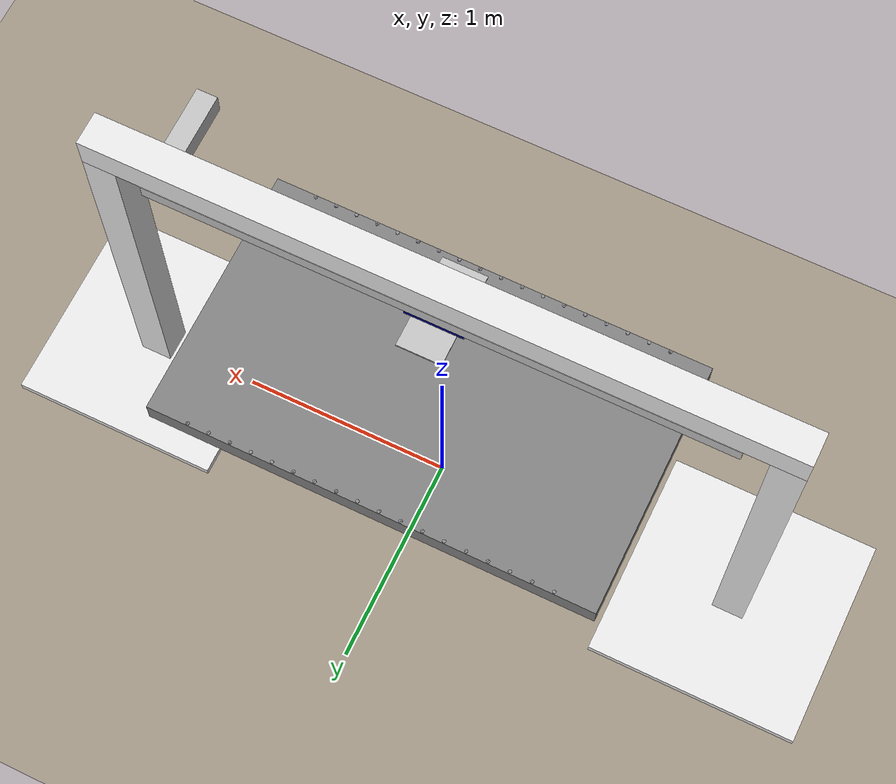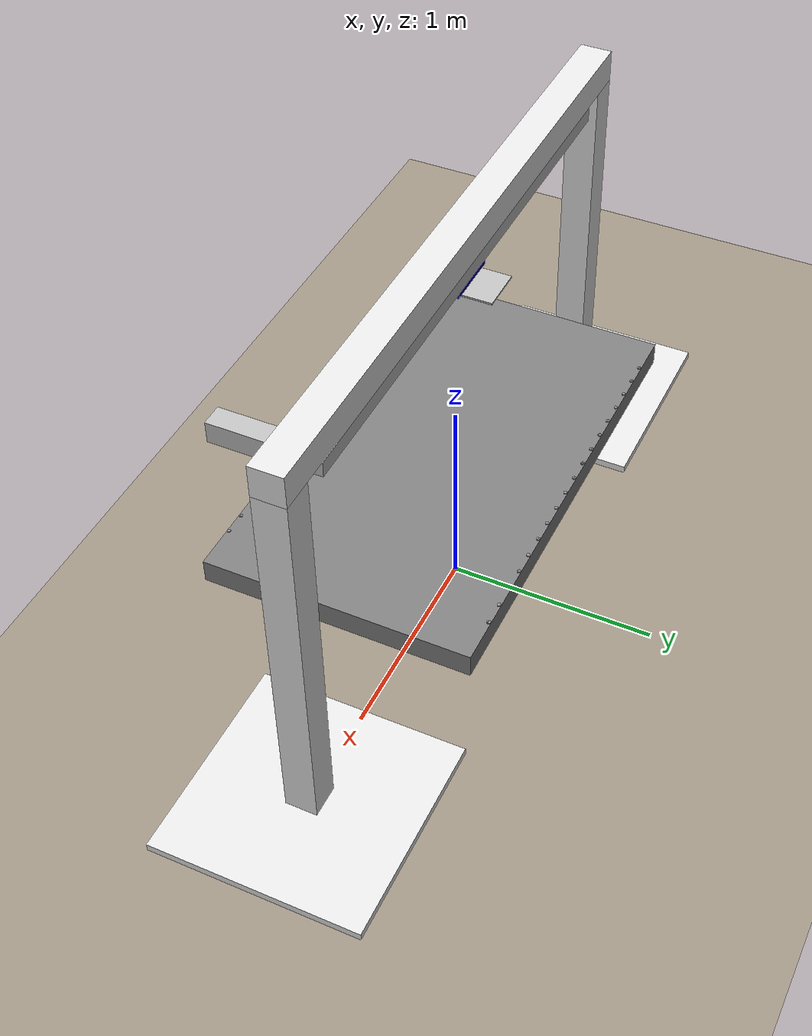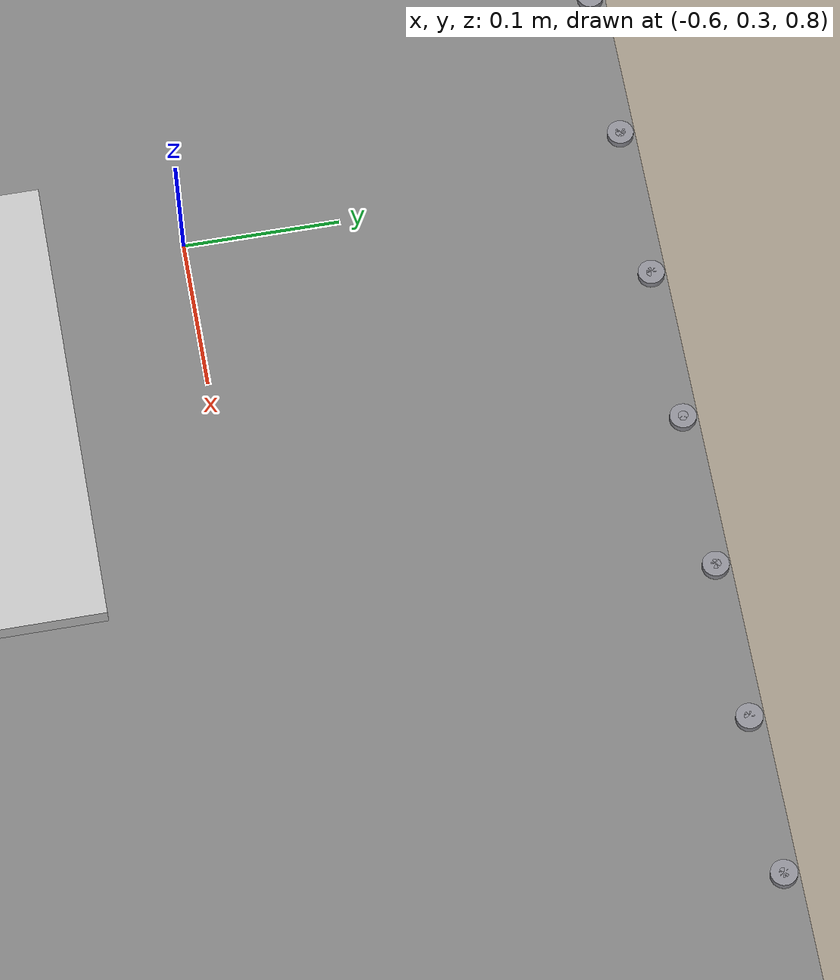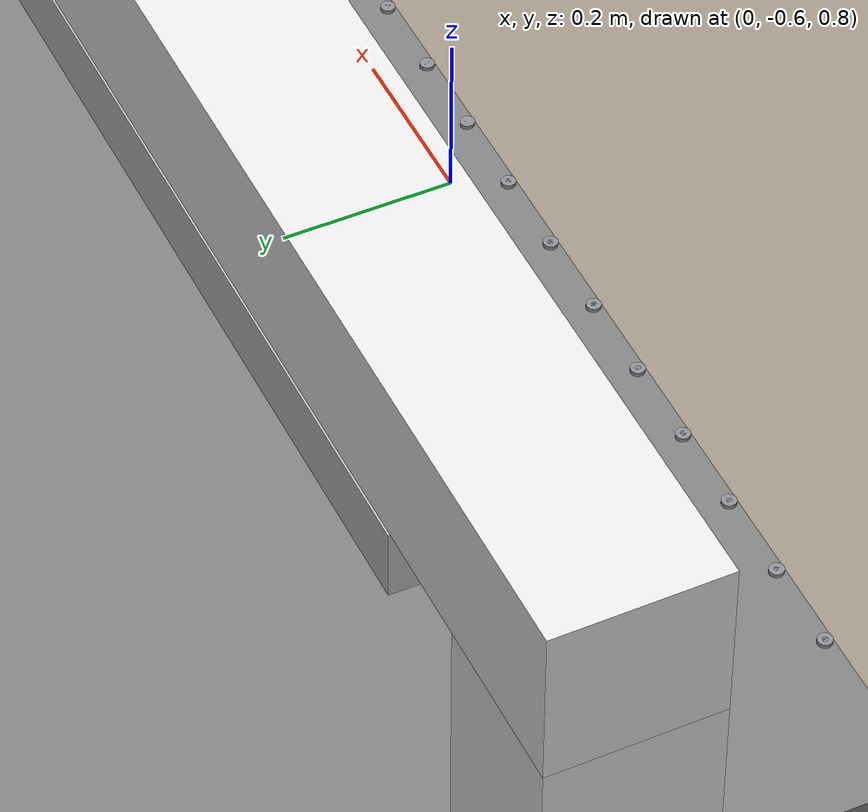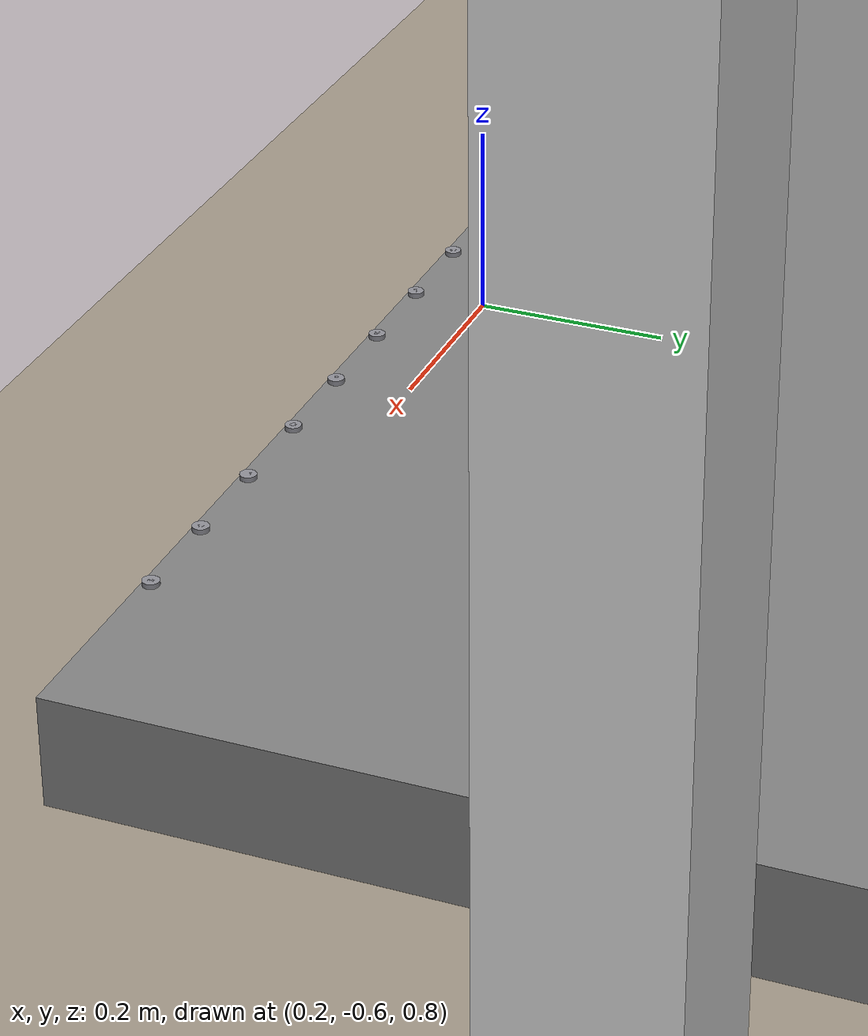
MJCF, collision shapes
<mujoco model="arpa_system">
  <!-- ARPA disassembly workcell, ported from arpa_description            -->
  <!--   (urdf/arpa_system_macro.urdf.xacro + gantry/linear_actuator      -->
  <!--    xacros). Hand-composed from the URDF's fixed-joint chain so it   -->
  <!--    needs no external ROS packages.                                  -->
  <!-- Included: gantry frame (crossbeam, 2 pillars, 2 feet), the battery  -->
  <!--   pack/table (mesh), and the linear actuator (rail + motor + a      -->
  <!--   prismatic carriage plate + arm-mount plate).                      -->
  <!-- NOT included: the UR16e arm, tool holder, runner, camera — those    -->
  <!--   come from external ur_description / parker packages and hang off   -->
  <!--   the arm's tool0, so they are not part of the standalone cell.      -->
  <!-- View: python CL_Assets/view_mjcf.py CL_Assets/battery/arpa_system.xml
       floor_link (cell origin) sits at world z=0; battery surface ~0.73 m. -->

  <compiler angle="radian" autolimits="true"/>
  <option integrator="implicitfast" timestep="0.002">
    <flag multiccd="enable"/>
  </option>

  <statistic center="0 0 1.0" extent="2.5"/>

  <visual>
    <headlight diffuse="0.6 0.6 0.6" ambient="0.2 0.2 0.2" specular="0.3 0.3 0.3"/>
    <global azimuth="130" elevation="-20"/>
  </visual>

  <asset>
    <!--  scene dressing (drop these three + the floor/light below when
              embedding the cell into another scene, e.g. RoboCasa)  -->
    <texture type="skybox" builtin="gradient" rgb1="0.78 0.90 0.78" rgb2="0.55 0.75 0.58" width="512" height="3072"/>
    <texture type="2d" name="groundplane" builtin="flat" mark="edge"
             rgb1="0.62 0.58 0.52" rgb2="0.1 0.2 0.3" markrgb="0.8 0.8 0.8" width="300" height="300"/>
    <material name="groundplane" texture="groundplane" texuniform="true" texrepeat="5 5" reflectance="0.1"/>

    <!--  cell materials (from materials.xacro + inline URDF colors)  -->
    <material name="gantry_gray"   rgba="0.9 0.9 0.9 1"  specular="0.3" shininess="0.3"/>
    <material name="pillar_gray"   rgba="0.9 0.9 0.9 1"  specular="0.3" shininess="0.3"/>
    <material name="actuator_gray" rgba="0.75 0.75 0.75 1" specular="0.3" shininess="0.3"/>
    <material name="actuator_plate" rgba="0.0 0.0 0.5 1" specular="0.3" shininess="0.3"/>
    <material name="arm_mount_gray" rgba="0.75 0.75 0.75 1" specular="0.3" shininess="0.3"/>
    <material name="screw_steel"   rgba="0.55 0.55 0.58 1" specular="0.6" shininess="0.5"/>
    <material name="battery_black" rgba="0.1 0.1 0.1 1" specular="0.3" shininess="0.7"/>

    <mesh name="battery" file="meshes/battery.stl"/>
    <mesh name="screw_head" file="meshes/screw_head.stl" scale="0.001 0.001 0.001"/>
  </asset>

  <worldbody>
    <light pos="0 0 4.0" dir="0 0 -1" directional="true"/>
    <geom name="floor" size="0 0 0.05" type="plane" material="groundplane"/>

    <!-- floor_link (cell root). Move this body's pos to relocate the whole cell. -->
    <body name="arpa_cell" pos="0 0 0">

      <!-- gantry crossbeam @ z=1.9419 (static / world-welded) -->
      <body name="gantry_link" pos="0 0 1.9419">
        <geom name="gantry_beam" type="box" size="1.5494 0.075 0.075" material="gantry_gray"/>

        <!-- left pillar + foot -->
        <body name="pillar_left_link" pos="1.4744 0 -1.00845">
          <geom name="pillar_left" type="box" size="0.075 0.075 0.9335" material="pillar_gray"/>
          <body name="left_leg_link" pos="0 0 -0.925">
            <geom name="left_leg" type="box" size="0.5 0.5 0.025" material="pillar_gray"/>
          </body>
        </body>

        <!-- right pillar + foot -->
        <body name="pillar_right_link" pos="-1.4744 0 -1.00845">
          <geom name="pillar_right" type="box" size="0.075 0.075 0.9335" material="pillar_gray"/>
          <body name="right_leg_link" pos="0 0 -0.925">
            <geom name="right_leg" type="box" size="0.5 0.5 0.025" material="pillar_gray"/>
          </body>
        </body>

        <!-- battery pack / table (mesh), 90deg about Z, surface ~0.73 m -->
        <body name="battery_link" pos="0.067 -0.0235 -1.1869" euler="0 0 1.57">
          <geom name="battery" type="mesh" mesh="battery" material="battery_black"
                mass="400" contype="0" conaffinity="0"/>
          <geom name="battery_collision" type="box" size="0.6125 1.06 0.055" pos="0 0 0.055" group="3"
                friction="1 0.005 0.001" condim="4" priority="1"
                solref="0.004 1" solimp="0.95 0.99 0.001"/>
        </body>

        <!-- linear actuator rail -->
        <body name="linear_actuator_link" pos="0 0 -0.11375">
          <geom name="actuator_rail" type="box" size="1.29 0.075 0.03375" material="actuator_gray"/>

          <!-- actuator motor (fixed to rail) -->
          <body name="actuator_motor_link" pos="1.245 -0.2425 0">
            <geom name="actuator_motor" type="box" size="0.0475 0.1675 0.0475" material="actuator_gray"/>
          </body>

          <body name="linear_actuator_plate_link" pos="0 0 -0.04375">
            <joint name="carriage_slide" type="slide" axis="1 0 0"
                   range="-0.9756 0.9244" damping="50"/>
            <geom name="carriage_plate" type="box" size="0.13 0.075 0.01" mass="5" material="actuator_plate"/>

            <!-- arm mount plate (where the UR16e would bolt on) -->
            <body name="arm_mount_plate" pos="0 0 -0.014" euler="0 0 3.14159">
              <geom name="arm_mount" type="box" size="0.1 0.21 0.004" mass="0.5" material="arm_mount_gray"/>
              <site name="arm_mount_site" pos="0 0 -0.004" size="0.01" rgba="0 1 0 0.3"/>
            </body>
          </body>
        </body>
      </body>
    </body>

    <!-- SCREW_ROW_START -->
    <body name="screw_01" pos="0.929980 0.578813 0.865000" euler="0 0 3.140796">
      <joint name="screw_01_free" type="free"/>
      <geom name="screw_01_head_visual" type="mesh" mesh="screw_head" euler="1.5707963 0 0" pos="0 0 0.011262"
            material="screw_steel" contype="0" conaffinity="0" density="0"/>
      <geom name="screw_01_head_collision" type="cylinder" size="0.008255 0.002500" pos="0 0 0.002500" group="3"
            mass="0.00418" material="screw_steel" friction="1 0.005 0.001" solref="0.004 1" solimp="0.95 0.99 0.001" priority="1"/>
      <geom name="screw_01_shaft" type="cylinder" size="0.003175 0.009525" pos="0 0 -0.004525"
            mass="0.00382" material="screw_steel" contype="0" conaffinity="0"/>
    </body>
    <body name="screw_02" pos="0.828380 0.578894 0.865000" euler="0 0 3.140796">
      <joint name="screw_02_free" type="free"/>
      <geom name="screw_02_head_visual" type="mesh" mesh="screw_head" euler="1.5707963 0 0" pos="0 0 0.011262"
            material="screw_steel" contype="0" conaffinity="0" density="0"/>
      <geom name="screw_02_head_collision" type="cylinder" size="0.008255 0.002500" pos="0 0 0.002500" group="3"
            mass="0.00418" material="screw_steel" friction="1 0.005 0.001" solref="0.004 1" solimp="0.95 0.99 0.001" priority="1"/>
      <geom name="screw_02_shaft" type="cylinder" size="0.003175 0.009525" pos="0 0 -0.004525"
            mass="0.00382" material="screw_steel" contype="0" conaffinity="0"/>
    </body>
    <body name="screw_03" pos="0.726780 0.578975 0.865000" euler="0 0 3.140796">
      <joint name="screw_03_free" type="free"/>
      <geom name="screw_03_head_visual" type="mesh" mesh="screw_head" euler="1.5707963 0 0" pos="0 0 0.011262"
            material="screw_steel" contype="0" conaffinity="0" density="0"/>
      <geom name="screw_03_head_collision" type="cylinder" size="0.008255 0.002500" pos="0 0 0.002500" group="3"
            mass="0.00418" material="screw_steel" friction="1 0.005 0.001" solref="0.004 1" solimp="0.95 0.99 0.001" priority="1"/>
      <geom name="screw_03_shaft" type="cylinder" size="0.003175 0.009525" pos="0 0 -0.004525"
            mass="0.00382" material="screw_steel" contype="0" conaffinity="0"/>
    </body>
    <body name="screw_04" pos="0.625180 0.579056 0.865000" euler="0 0 3.140796">
      <joint name="screw_04_free" type="free"/>
      <geom name="screw_04_head_visual" type="mesh" mesh="screw_head" euler="1.5707963 0 0" pos="0 0 0.011262"
            material="screw_steel" contype="0" conaffinity="0" density="0"/>
      <geom name="screw_04_head_collision" type="cylinder" size="0.008255 0.002500" pos="0 0 0.002500" group="3"
            mass="0.00418" material="screw_steel" friction="1 0.005 0.001" solref="0.004 1" solimp="0.95 0.99 0.001" priority="1"/>
      <geom name="screw_04_shaft" type="cylinder" size="0.003175 0.009525" pos="0 0 -0.004525"
            mass="0.00382" material="screw_steel" contype="0" conaffinity="0"/>
    </body>
    <body name="screw_05" pos="0.523580 0.579137 0.865000" euler="0 0 3.140796">
      <joint name="screw_05_free" type="free"/>
      <geom name="screw_05_head_visual" type="mesh" mesh="screw_head" euler="1.5707963 0 0" pos="0 0 0.011262"
            material="screw_steel" contype="0" conaffinity="0" density="0"/>
      <geom name="screw_05_head_collision" type="cylinder" size="0.008255 0.002500" pos="0 0 0.002500" group="3"
            mass="0.00418" material="screw_steel" friction="1 0.005 0.001" solref="0.004 1" solimp="0.95 0.99 0.001" priority="1"/>
      <geom name="screw_05_shaft" type="cylinder" size="0.003175 0.009525" pos="0 0 -0.004525"
            mass="0.00382" material="screw_steel" contype="0" conaffinity="0"/>
    </body>
    <body name="screw_06" pos="0.421980 0.579218 0.865000" euler="0 0 3.140796">
      <joint name="screw_06_free" type="free"/>
      <geom name="screw_06_head_visual" type="mesh" mesh="screw_head" euler="1.5707963 0 0" pos="0 0 0.011262"
            material="screw_steel" contype="0" conaffinity="0" density="0"/>
      <geom name="screw_06_head_collision" type="cylinder" size="0.008255 0.002500" pos="0 0 0.002500" group="3"
            mass="0.00418" material="screw_steel" friction="1 0.005 0.001" solref="0.004 1" solimp="0.95 0.99 0.001" priority="1"/>
      <geom name="screw_06_shaft" type="cylinder" size="0.003175 0.009525" pos="0 0 -0.004525"
            mass="0.00382" material="screw_steel" contype="0" conaffinity="0"/>
    </body>
    <body name="screw_07" pos="0.320380 0.579298 0.865000" euler="0 0 3.140796">
      <joint name="screw_07_free" type="free"/>
      <geom name="screw_07_head_visual" type="mesh" mesh="screw_head" euler="1.5707963 0 0" pos="0 0 0.011262"
            material="screw_steel" contype="0" conaffinity="0" density="0"/>
      <geom name="screw_07_head_collision" type="cylinder" size="0.008255 0.002500" pos="0 0 0.002500" group="3"
            mass="0.00418" material="screw_steel" friction="1 0.005 0.001" solref="0.004 1" solimp="0.95 0.99 0.001" priority="1"/>
      <geom name="screw_07_shaft" type="cylinder" size="0.003175 0.009525" pos="0 0 -0.004525"
            mass="0.00382" material="screw_steel" contype="0" conaffinity="0"/>
    </body>
    <body name="screw_08" pos="0.218780 0.579379 0.865000" euler="0 0 3.140796">
      <joint name="screw_08_free" type="free"/>
      <geom name="screw_08_head_visual" type="mesh" mesh="screw_head" euler="1.5707963 0 0" pos="0 0 0.011262"
            material="screw_steel" contype="0" conaffinity="0" density="0"/>
      <geom name="screw_08_head_collision" type="cylinder" size="0.008255 0.002500" pos="0 0 0.002500" group="3"
            mass="0.00418" material="screw_steel" friction="1 0.005 0.001" solref="0.004 1" solimp="0.95 0.99 0.001" priority="1"/>
      <geom name="screw_08_shaft" type="cylinder" size="0.003175 0.009525" pos="0 0 -0.004525"
            mass="0.00382" material="screw_steel" contype="0" conaffinity="0"/>
    </body>
    <body name="screw_09" pos="0.117180 0.579460 0.865000" euler="0 0 3.140796">
      <joint name="screw_09_free" type="free"/>
      <geom name="screw_09_head_visual" type="mesh" mesh="screw_head" euler="1.5707963 0 0" pos="0 0 0.011262"
            material="screw_steel" contype="0" conaffinity="0" density="0"/>
      <geom name="screw_09_head_collision" type="cylinder" size="0.008255 0.002500" pos="0 0 0.002500" group="3"
            mass="0.00418" material="screw_steel" friction="1 0.005 0.001" solref="0.004 1" solimp="0.95 0.99 0.001" priority="1"/>
      <geom name="screw_09_shaft" type="cylinder" size="0.003175 0.009525" pos="0 0 -0.004525"
            mass="0.00382" material="screw_steel" contype="0" conaffinity="0"/>
    </body>
    <body name="screw_10" pos="0.015580 0.579541 0.865000" euler="0 0 3.140796">
      <joint name="screw_10_free" type="free"/>
      <geom name="screw_10_head_visual" type="mesh" mesh="screw_head" euler="1.5707963 0 0" pos="0 0 0.011262"
            material="screw_steel" contype="0" conaffinity="0" density="0"/>
      <geom name="screw_10_head_collision" type="cylinder" size="0.008255 0.002500" pos="0 0 0.002500" group="3"
            mass="0.00418" material="screw_steel" friction="1 0.005 0.001" solref="0.004 1" solimp="0.95 0.99 0.001" priority="1"/>
      <geom name="screw_10_shaft" type="cylinder" size="0.003175 0.009525" pos="0 0 -0.004525"
            mass="0.00382" material="screw_steel" contype="0" conaffinity="0"/>
    </body>
    <body name="screw_11" pos="-0.086020 0.579622 0.865000" euler="0 0 3.140796">
      <joint name="screw_11_free" type="free"/>
      <geom name="screw_11_head_visual" type="mesh" mesh="screw_head" euler="1.5707963 0 0" pos="0 0 0.011262"
            material="screw_steel" contype="0" conaffinity="0" density="0"/>
      <geom name="screw_11_head_collision" type="cylinder" size="0.008255 0.002500" pos="0 0 0.002500" group="3"
            mass="0.00418" material="screw_steel" friction="1 0.005 0.001" solref="0.004 1" solimp="0.95 0.99 0.001" priority="1"/>
      <geom name="screw_11_shaft" type="cylinder" size="0.003175 0.009525" pos="0 0 -0.004525"
            mass="0.00382" material="screw_steel" contype="0" conaffinity="0"/>
    </body>
    <body name="screw_12" pos="-0.187620 0.579703 0.865000" euler="0 0 3.140796">
      <joint name="screw_12_free" type="free"/>
      <geom name="screw_12_head_visual" type="mesh" mesh="screw_head" euler="1.5707963 0 0" pos="0 0 0.011262"
            material="screw_steel" contype="0" conaffinity="0" density="0"/>
      <geom name="screw_12_head_collision" type="cylinder" size="0.008255 0.002500" pos="0 0 0.002500" group="3"
            mass="0.00418" material="screw_steel" friction="1 0.005 0.001" solref="0.004 1" solimp="0.95 0.99 0.001" priority="1"/>
      <geom name="screw_12_shaft" type="cylinder" size="0.003175 0.009525" pos="0 0 -0.004525"
            mass="0.00382" material="screw_steel" contype="0" conaffinity="0"/>
    </body>
    <body name="screw_13" pos="-0.289220 0.579784 0.865000" euler="0 0 3.140796">
      <joint name="screw_13_free" type="free"/>
      <geom name="screw_13_head_visual" type="mesh" mesh="screw_head" euler="1.5707963 0 0" pos="0 0 0.011262"
            material="screw_steel" contype="0" conaffinity="0" density="0"/>
      <geom name="screw_13_head_collision" type="cylinder" size="0.008255 0.002500" pos="0 0 0.002500" group="3"
            mass="0.00418" material="screw_steel" friction="1 0.005 0.001" solref="0.004 1" solimp="0.95 0.99 0.001" priority="1"/>
      <geom name="screw_13_shaft" type="cylinder" size="0.003175 0.009525" pos="0 0 -0.004525"
            mass="0.00382" material="screw_steel" contype="0" conaffinity="0"/>
    </body>
    <body name="screw_14" pos="-0.390820 0.579865 0.865000" euler="0 0 3.140796">
      <joint name="screw_14_free" type="free"/>
      <geom name="screw_14_head_visual" type="mesh" mesh="screw_head" euler="1.5707963 0 0" pos="0 0 0.011262"
            material="screw_steel" contype="0" conaffinity="0" density="0"/>
      <geom name="screw_14_head_collision" type="cylinder" size="0.008255 0.002500" pos="0 0 0.002500" group="3"
            mass="0.00418" material="screw_steel" friction="1 0.005 0.001" solref="0.004 1" solimp="0.95 0.99 0.001" priority="1"/>
      <geom name="screw_14_shaft" type="cylinder" size="0.003175 0.009525" pos="0 0 -0.004525"
            mass="0.00382" material="screw_steel" contype="0" conaffinity="0"/>
    </body>
    <body name="screw_15" pos="-0.492420 0.579946 0.865000" euler="0 0 3.140796">
      <joint name="screw_15_free" type="free"/>
      <geom name="screw_15_head_visual" type="mesh" mesh="screw_head" euler="1.5707963 0 0" pos="0 0 0.011262"
            material="screw_steel" contype="0" conaffinity="0" density="0"/>
      <geom name="screw_15_head_collision" type="cylinder" size="0.008255 0.002500" pos="0 0 0.002500" group="3"
            mass="0.00418" material="screw_steel" friction="1 0.005 0.001" solref="0.004 1" solimp="0.95 0.99 0.001" priority="1"/>
      <geom name="screw_15_shaft" type="cylinder" size="0.003175 0.009525" pos="0 0 -0.004525"
            mass="0.00382" material="screw_steel" contype="0" conaffinity="0"/>
    </body>
    <body name="screw_16" pos="-0.594020 0.580027 0.865000" euler="0 0 3.140796">
      <joint name="screw_16_free" type="free"/>
      <geom name="screw_16_head_visual" type="mesh" mesh="screw_head" euler="1.5707963 0 0" pos="0 0 0.011262"
            material="screw_steel" contype="0" conaffinity="0" density="0"/>
      <geom name="screw_16_head_collision" type="cylinder" size="0.008255 0.002500" pos="0 0 0.002500" group="3"
            mass="0.00418" material="screw_steel" friction="1 0.005 0.001" solref="0.004 1" solimp="0.95 0.99 0.001" priority="1"/>
      <geom name="screw_16_shaft" type="cylinder" size="0.003175 0.009525" pos="0 0 -0.004525"
            mass="0.00382" material="screw_steel" contype="0" conaffinity="0"/>
    </body>
    <body name="screw_17" pos="-0.695620 0.580107 0.865000" euler="0 0 3.140796">
      <joint name="screw_17_free" type="free"/>
      <geom name="screw_17_head_visual" type="mesh" mesh="screw_head" euler="1.5707963 0 0" pos="0 0 0.011262"
            material="screw_steel" contype="0" conaffinity="0" density="0"/>
      <geom name="screw_17_head_collision" type="cylinder" size="0.008255 0.002500" pos="0 0 0.002500" group="3"
            mass="0.00418" material="screw_steel" friction="1 0.005 0.001" solref="0.004 1" solimp="0.95 0.99 0.001" priority="1"/>
      <geom name="screw_17_shaft" type="cylinder" size="0.003175 0.009525" pos="0 0 -0.004525"
            mass="0.00382" material="screw_steel" contype="0" conaffinity="0"/>
    </body>
    <body name="screw_18" pos="-0.797220 0.580188 0.865000" euler="0 0 3.140796">
      <joint name="screw_18_free" type="free"/>
      <geom name="screw_18_head_visual" type="mesh" mesh="screw_head" euler="1.5707963 0 0" pos="0 0 0.011262"
            material="screw_steel" contype="0" conaffinity="0" density="0"/>
      <geom name="screw_18_head_collision" type="cylinder" size="0.008255 0.002500" pos="0 0 0.002500" group="3"
            mass="0.00418" material="screw_steel" friction="1 0.005 0.001" solref="0.004 1" solimp="0.95 0.99 0.001" priority="1"/>
      <geom name="screw_18_shaft" type="cylinder" size="0.003175 0.009525" pos="0 0 -0.004525"
            mass="0.00382" material="screw_steel" contype="0" conaffinity="0"/>
    </body>
    <body name="screw_19" pos="0.929020 -0.627187 0.865000" euler="0 0 3.140796">
      <joint name="screw_19_free" type="free"/>
      <geom name="screw_19_head_visual" type="mesh" mesh="screw_head" euler="1.5707963 0 0" pos="0 0 0.011262"
            material="screw_steel" contype="0" conaffinity="0" density="0"/>
      <geom name="screw_19_head_collision" type="cylinder" size="0.008255 0.002500" pos="0 0 0.002500" group="3"
            mass="0.00418" material="screw_steel" friction="1 0.005 0.001" solref="0.004 1" solimp="0.95 0.99 0.001" priority="1"/>
      <geom name="screw_19_shaft" type="cylinder" size="0.003175 0.009525" pos="0 0 -0.004525"
            mass="0.00382" material="screw_steel" contype="0" conaffinity="0"/>
    </body>
    <body name="screw_20" pos="0.827420 -0.627106 0.865000" euler="0 0 3.140796">
      <joint name="screw_20_free" type="free"/>
      <geom name="screw_20_head_visual" type="mesh" mesh="screw_head" euler="1.5707963 0 0" pos="0 0 0.011262"
            material="screw_steel" contype="0" conaffinity="0" density="0"/>
      <geom name="screw_20_head_collision" type="cylinder" size="0.008255 0.002500" pos="0 0 0.002500" group="3"
            mass="0.00418" material="screw_steel" friction="1 0.005 0.001" solref="0.004 1" solimp="0.95 0.99 0.001" priority="1"/>
      <geom name="screw_20_shaft" type="cylinder" size="0.003175 0.009525" pos="0 0 -0.004525"
            mass="0.00382" material="screw_steel" contype="0" conaffinity="0"/>
    </body>
    <body name="screw_21" pos="0.725820 -0.627025 0.865000" euler="0 0 3.140796">
      <joint name="screw_21_free" type="free"/>
      <geom name="screw_21_head_visual" type="mesh" mesh="screw_head" euler="1.5707963 0 0" pos="0 0 0.011262"
            material="screw_steel" contype="0" conaffinity="0" density="0"/>
      <geom name="screw_21_head_collision" type="cylinder" size="0.008255 0.002500" pos="0 0 0.002500" group="3"
            mass="0.00418" material="screw_steel" friction="1 0.005 0.001" solref="0.004 1" solimp="0.95 0.99 0.001" priority="1"/>
      <geom name="screw_21_shaft" type="cylinder" size="0.003175 0.009525" pos="0 0 -0.004525"
            mass="0.00382" material="screw_steel" contype="0" conaffinity="0"/>
    </body>
    <body name="screw_22" pos="0.624220 -0.626944 0.865000" euler="0 0 3.140796">
      <joint name="screw_22_free" type="free"/>
      <geom name="screw_22_head_visual" type="mesh" mesh="screw_head" euler="1.5707963 0 0" pos="0 0 0.011262"
            material="screw_steel" contype="0" conaffinity="0" density="0"/>
      <geom name="screw_22_head_collision" type="cylinder" size="0.008255 0.002500" pos="0 0 0.002500" group="3"
            mass="0.00418" material="screw_steel" friction="1 0.005 0.001" solref="0.004 1" solimp="0.95 0.99 0.001" priority="1"/>
      <geom name="screw_22_shaft" type="cylinder" size="0.003175 0.009525" pos="0 0 -0.004525"
            mass="0.00382" material="screw_steel" contype="0" conaffinity="0"/>
    </body>
    <body name="screw_23" pos="0.522620 -0.626863 0.865000" euler="0 0 3.140796">
      <joint name="screw_23_free" type="free"/>
      <geom name="screw_23_head_visual" type="mesh" mesh="screw_head" euler="1.5707963 0 0" pos="0 0 0.011262"
            material="screw_steel" contype="0" conaffinity="0" density="0"/>
      <geom name="screw_23_head_collision" type="cylinder" size="0.008255 0.002500" pos="0 0 0.002500" group="3"
            mass="0.00418" material="screw_steel" friction="1 0.005 0.001" solref="0.004 1" solimp="0.95 0.99 0.001" priority="1"/>
      <geom name="screw_23_shaft" type="cylinder" size="0.003175 0.009525" pos="0 0 -0.004525"
            mass="0.00382" material="screw_steel" contype="0" conaffinity="0"/>
    </body>
    <body name="screw_24" pos="0.421020 -0.626782 0.865000" euler="0 0 3.140796">
      <joint name="screw_24_free" type="free"/>
      <geom name="screw_24_head_visual" type="mesh" mesh="screw_head" euler="1.5707963 0 0" pos="0 0 0.011262"
            material="screw_steel" contype="0" conaffinity="0" density="0"/>
      <geom name="screw_24_head_collision" type="cylinder" size="0.008255 0.002500" pos="0 0 0.002500" group="3"
            mass="0.00418" material="screw_steel" friction="1 0.005 0.001" solref="0.004 1" solimp="0.95 0.99 0.001" priority="1"/>
      <geom name="screw_24_shaft" type="cylinder" size="0.003175 0.009525" pos="0 0 -0.004525"
            mass="0.00382" material="screw_steel" contype="0" conaffinity="0"/>
    </body>
    <body name="screw_25" pos="0.319420 -0.626701 0.865000" euler="0 0 3.140796">
      <joint name="screw_25_free" type="free"/>
      <geom name="screw_25_head_visual" type="mesh" mesh="screw_head" euler="1.5707963 0 0" pos="0 0 0.011262"
            material="screw_steel" contype="0" conaffinity="0" density="0"/>
      <geom name="screw_25_head_collision" type="cylinder" size="0.008255 0.002500" pos="0 0 0.002500" group="3"
            mass="0.00418" material="screw_steel" friction="1 0.005 0.001" solref="0.004 1" solimp="0.95 0.99 0.001" priority="1"/>
      <geom name="screw_25_shaft" type="cylinder" size="0.003175 0.009525" pos="0 0 -0.004525"
            mass="0.00382" material="screw_steel" contype="0" conaffinity="0"/>
    </body>
    <body name="screw_26" pos="0.217820 -0.626620 0.865000" euler="0 0 3.140796">
      <joint name="screw_26_free" type="free"/>
      <geom name="screw_26_head_visual" type="mesh" mesh="screw_head" euler="1.5707963 0 0" pos="0 0 0.011262"
            material="screw_steel" contype="0" conaffinity="0" density="0"/>
      <geom name="screw_26_head_collision" type="cylinder" size="0.008255 0.002500" pos="0 0 0.002500" group="3"
            mass="0.00418" material="screw_steel" friction="1 0.005 0.001" solref="0.004 1" solimp="0.95 0.99 0.001" priority="1"/>
      <geom name="screw_26_shaft" type="cylinder" size="0.003175 0.009525" pos="0 0 -0.004525"
            mass="0.00382" material="screw_steel" contype="0" conaffinity="0"/>
    </body>
    <body name="screw_27" pos="0.116220 -0.626539 0.865000" euler="0 0 3.140796">
      <joint name="screw_27_free" type="free"/>
      <geom name="screw_27_head_visual" type="mesh" mesh="screw_head" euler="1.5707963 0 0" pos="0 0 0.011262"
            material="screw_steel" contype="0" conaffinity="0" density="0"/>
      <geom name="screw_27_head_collision" type="cylinder" size="0.008255 0.002500" pos="0 0 0.002500" group="3"
            mass="0.00418" material="screw_steel" friction="1 0.005 0.001" solref="0.004 1" solimp="0.95 0.99 0.001" priority="1"/>
      <geom name="screw_27_shaft" type="cylinder" size="0.003175 0.009525" pos="0 0 -0.004525"
            mass="0.00382" material="screw_steel" contype="0" conaffinity="0"/>
    </body>
    <body name="screw_28" pos="0.014620 -0.626458 0.865000" euler="0 0 3.140796">
      <joint name="screw_28_free" type="free"/>
      <geom name="screw_28_head_visual" type="mesh" mesh="screw_head" euler="1.5707963 0 0" pos="0 0 0.011262"
            material="screw_steel" contype="0" conaffinity="0" density="0"/>
      <geom name="screw_28_head_collision" type="cylinder" size="0.008255 0.002500" pos="0 0 0.002500" group="3"
            mass="0.00418" material="screw_steel" friction="1 0.005 0.001" solref="0.004 1" solimp="0.95 0.99 0.001" priority="1"/>
      <geom name="screw_28_shaft" type="cylinder" size="0.003175 0.009525" pos="0 0 -0.004525"
            mass="0.00382" material="screw_steel" contype="0" conaffinity="0"/>
    </body>
    <body name="screw_29" pos="-0.086980 -0.626378 0.865000" euler="0 0 3.140796">
      <joint name="screw_29_free" type="free"/>
      <geom name="screw_29_head_visual" type="mesh" mesh="screw_head" euler="1.5707963 0 0" pos="0 0 0.011262"
            material="screw_steel" contype="0" conaffinity="0" density="0"/>
      <geom name="screw_29_head_collision" type="cylinder" size="0.008255 0.002500" pos="0 0 0.002500" group="3"
            mass="0.00418" material="screw_steel" friction="1 0.005 0.001" solref="0.004 1" solimp="0.95 0.99 0.001" priority="1"/>
      <geom name="screw_29_shaft" type="cylinder" size="0.003175 0.009525" pos="0 0 -0.004525"
            mass="0.00382" material="screw_steel" contype="0" conaffinity="0"/>
    </body>
    <body name="screw_30" pos="-0.188580 -0.626297 0.865000" euler="0 0 3.140796">
      <joint name="screw_30_free" type="free"/>
      <geom name="screw_30_head_visual" type="mesh" mesh="screw_head" euler="1.5707963 0 0" pos="0 0 0.011262"
            material="screw_steel" contype="0" conaffinity="0" density="0"/>
      <geom name="screw_30_head_collision" type="cylinder" size="0.008255 0.002500" pos="0 0 0.002500" group="3"
            mass="0.00418" material="screw_steel" friction="1 0.005 0.001" solref="0.004 1" solimp="0.95 0.99 0.001" priority="1"/>
      <geom name="screw_30_shaft" type="cylinder" size="0.003175 0.009525" pos="0 0 -0.004525"
            mass="0.00382" material="screw_steel" contype="0" conaffinity="0"/>
    </body>
    <body name="screw_31" pos="-0.290180 -0.626216 0.865000" euler="0 0 3.140796">
      <joint name="screw_31_free" type="free"/>
      <geom name="screw_31_head_visual" type="mesh" mesh="screw_head" euler="1.5707963 0 0" pos="0 0 0.011262"
            material="screw_steel" contype="0" conaffinity="0" density="0"/>
      <geom name="screw_31_head_collision" type="cylinder" size="0.008255 0.002500" pos="0 0 0.002500" group="3"
            mass="0.00418" material="screw_steel" friction="1 0.005 0.001" solref="0.004 1" solimp="0.95 0.99 0.001" priority="1"/>
      <geom name="screw_31_shaft" type="cylinder" size="0.003175 0.009525" pos="0 0 -0.004525"
            mass="0.00382" material="screw_steel" contype="0" conaffinity="0"/>
    </body>
    <body name="screw_32" pos="-0.391780 -0.626135 0.865000" euler="0 0 3.140796">
      <joint name="screw_32_free" type="free"/>
      <geom name="screw_32_head_visual" type="mesh" mesh="screw_head" euler="1.5707963 0 0" pos="0 0 0.011262"
            material="screw_steel" contype="0" conaffinity="0" density="0"/>
      <geom name="screw_32_head_collision" type="cylinder" size="0.008255 0.002500" pos="0 0 0.002500" group="3"
            mass="0.00418" material="screw_steel" friction="1 0.005 0.001" solref="0.004 1" solimp="0.95 0.99 0.001" priority="1"/>
      <geom name="screw_32_shaft" type="cylinder" size="0.003175 0.009525" pos="0 0 -0.004525"
            mass="0.00382" material="screw_steel" contype="0" conaffinity="0"/>
    </body>
    <body name="screw_33" pos="-0.493380 -0.626054 0.865000" euler="0 0 3.140796">
      <joint name="screw_33_free" type="free"/>
      <geom name="screw_33_head_visual" type="mesh" mesh="screw_head" euler="1.5707963 0 0" pos="0 0 0.011262"
            material="screw_steel" contype="0" conaffinity="0" density="0"/>
      <geom name="screw_33_head_collision" type="cylinder" size="0.008255 0.002500" pos="0 0 0.002500" group="3"
            mass="0.00418" material="screw_steel" friction="1 0.005 0.001" solref="0.004 1" solimp="0.95 0.99 0.001" priority="1"/>
      <geom name="screw_33_shaft" type="cylinder" size="0.003175 0.009525" pos="0 0 -0.004525"
            mass="0.00382" material="screw_steel" contype="0" conaffinity="0"/>
    </body>
    <body name="screw_34" pos="-0.594980 -0.625973 0.865000" euler="0 0 3.140796">
      <joint name="screw_34_free" type="free"/>
      <geom name="screw_34_head_visual" type="mesh" mesh="screw_head" euler="1.5707963 0 0" pos="0 0 0.011262"
            material="screw_steel" contype="0" conaffinity="0" density="0"/>
      <geom name="screw_34_head_collision" type="cylinder" size="0.008255 0.002500" pos="0 0 0.002500" group="3"
            mass="0.00418" material="screw_steel" friction="1 0.005 0.001" solref="0.004 1" solimp="0.95 0.99 0.001" priority="1"/>
      <geom name="screw_34_shaft" type="cylinder" size="0.003175 0.009525" pos="0 0 -0.004525"
            mass="0.00382" material="screw_steel" contype="0" conaffinity="0"/>
    </body>
    <body name="screw_35" pos="-0.696580 -0.625892 0.865000" euler="0 0 3.140796">
      <joint name="screw_35_free" type="free"/>
      <geom name="screw_35_head_visual" type="mesh" mesh="screw_head" euler="1.5707963 0 0" pos="0 0 0.011262"
            material="screw_steel" contype="0" conaffinity="0" density="0"/>
      <geom name="screw_35_head_collision" type="cylinder" size="0.008255 0.002500" pos="0 0 0.002500" group="3"
            mass="0.00418" material="screw_steel" friction="1 0.005 0.001" solref="0.004 1" solimp="0.95 0.99 0.001" priority="1"/>
      <geom name="screw_35_shaft" type="cylinder" size="0.003175 0.009525" pos="0 0 -0.004525"
            mass="0.00382" material="screw_steel" contype="0" conaffinity="0"/>
    </body>
    <body name="screw_36" pos="-0.798180 -0.625811 0.865000" euler="0 0 3.140796">
      <joint name="screw_36_free" type="free"/>
      <geom name="screw_36_head_visual" type="mesh" mesh="screw_head" euler="1.5707963 0 0" pos="0 0 0.011262"
            material="screw_steel" contype="0" conaffinity="0" density="0"/>
      <geom name="screw_36_head_collision" type="cylinder" size="0.008255 0.002500" pos="0 0 0.002500" group="3"
            mass="0.00418" material="screw_steel" friction="1 0.005 0.001" solref="0.004 1" solimp="0.95 0.99 0.001" priority="1"/>
      <geom name="screw_36_shaft" type="cylinder" size="0.003175 0.009525" pos="0 0 -0.004525"
            mass="0.00382" material="screw_steel" contype="0" conaffinity="0"/>
    </body>
    <!-- SCREW_ROW_END -->
  </worldbody>
</mujoco>
